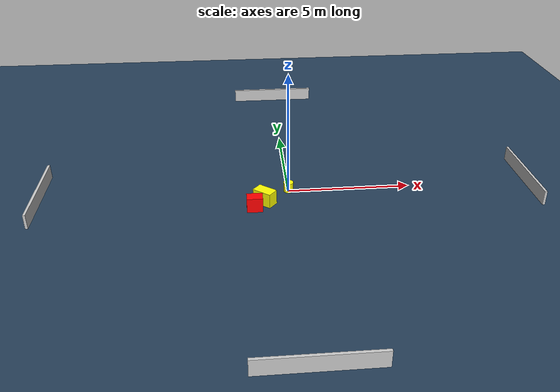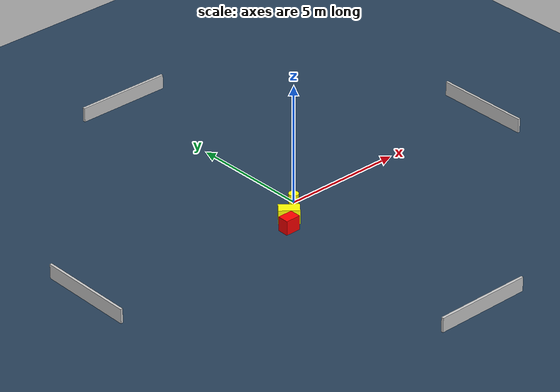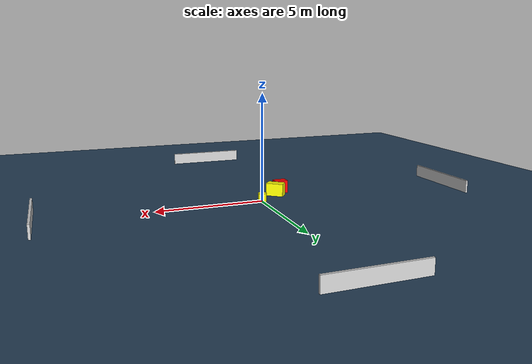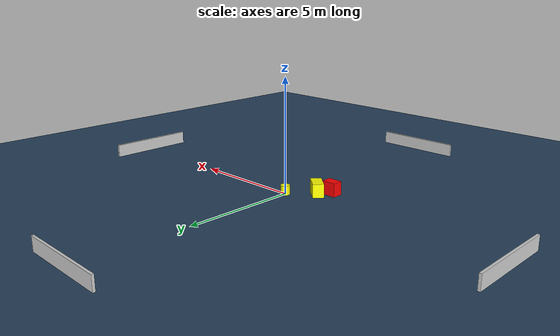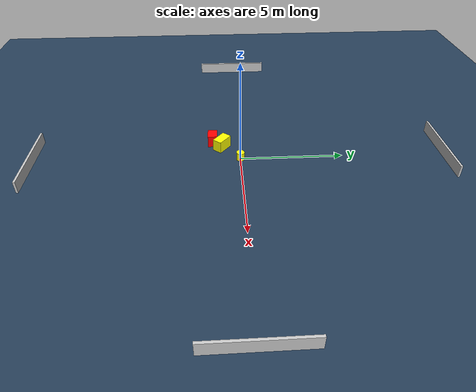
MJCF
<?xml version="1.0" ?>
<mujoco model="generated_environment">
  <option timestep="0.01" integrator="RK4" cone="elliptic"/>
  <default>
    <geom density="1"/>
  </default>
  <asset>
    <texture builtin="gradient" height="3072" name="skybox" rgb1="0.3 0.5 0.7" rgb2="0 0 0" type="skybox" width="512"/>
    <texture builtin="checker" height="300" name="groundplane" rgb1="0.2 0.3 0.4" rgb2="0.1 0.2 0.3" type="2d" width="300"/>
    <material name="groundplane" reflectance="0.2" texrepeat="5 5" texture="groundplane"/>
  </asset>
  <worldbody>
    <light dir="0 0 -1" directional="true" pos="0 0 1.5"/>
    <geom condim="3" friction="0.5 0.005 0.001" material="groundplane" name="floor" pos="0 0 0" size="0 0 0.05" type="plane"/>
    <body name="walls">
      <geom name="wall_1" condim="4" pos="-10.0 0.0 0.3" rgba="0.800000011920929 0.800000011920929 0.800000011920929 1.0" size="0.05 2.0 0.3" type="box"/>
      <geom name="wall_2" condim="4" pos="10.0 0.0 0.3" rgba="0.800000011920929 0.800000011920929 0.800000011920929 1.0" size="0.05 2.0 0.3" type="box"/>
      <geom name="wall_3" condim="4" pos="0.0 -10.0 0.3" rgba="0.800000011920929 0.800000011920929 0.800000011920929 1.0" size="2.0 0.05 0.3" type="box"/>
      <geom name="wall_4" condim="4" pos="0.0 10.0 0.3" rgba="0.800000011920929 0.800000011920929 0.800000011920929 1.0" size="2.0 0.05 0.3" type="box"/>
    </body>
    <body name="robot">
      <joint name="joint_x" type="slide" pos="0 0 0" axis="1 0 0"/>
      <joint name="joint_y" type="slide" pos="0 0 0" axis="0 1 0"/>
      <geom name="robot" type="cylinder" pos="0.0 0.0 0.2" size="0.2 0.2 0.0" mass="5.0" friction="1.0 0.005 0.0001" condim="4" rgba="1.0 1.0 0.0 1.0"/>
    </body>
    <body name="obstacle_1_movable">
      <geom name="obstacle_1_movable" condim="4" pos="-1.0188709247217171 -0.8732086794925441 0.3" euler="0 0 320.4276622387918" friction="0.0 0.005 0.001" rgba="1.0 1.0 0.0 1.0" size="0.4103985036070654 0.23906885085755053 0.3" type="box" mass="0.1"/>
      <joint type="free"/>
    </body>
    <body name="obstacle_2_static">
      <geom name="obstacle_2_static" condim="4" pos="-1.4414062778872028 -1.342094502045428 0.3" euler="0 0 269.7610879592431" friction="0.0 0.005 0.001" rgba="1.0 0.0 0.0 1.0" size="0.23080611704408016 0.3137307690448804 0.3" type="box"/>
    </body>
  </worldbody>
  <actuator>
    <motor name="actuator_x" joint="joint_x" gear="1" ctrlrange="-1 1"/>
    <motor name="actuator_y" joint="joint_y" gear="1" ctrlrange="-1 1"/>
  </actuator>
</mujoco>
